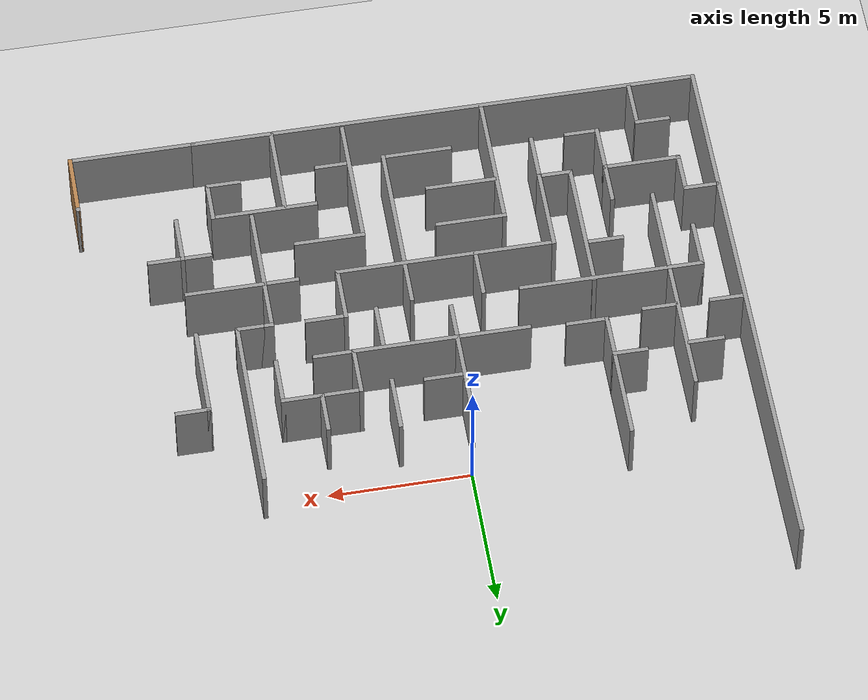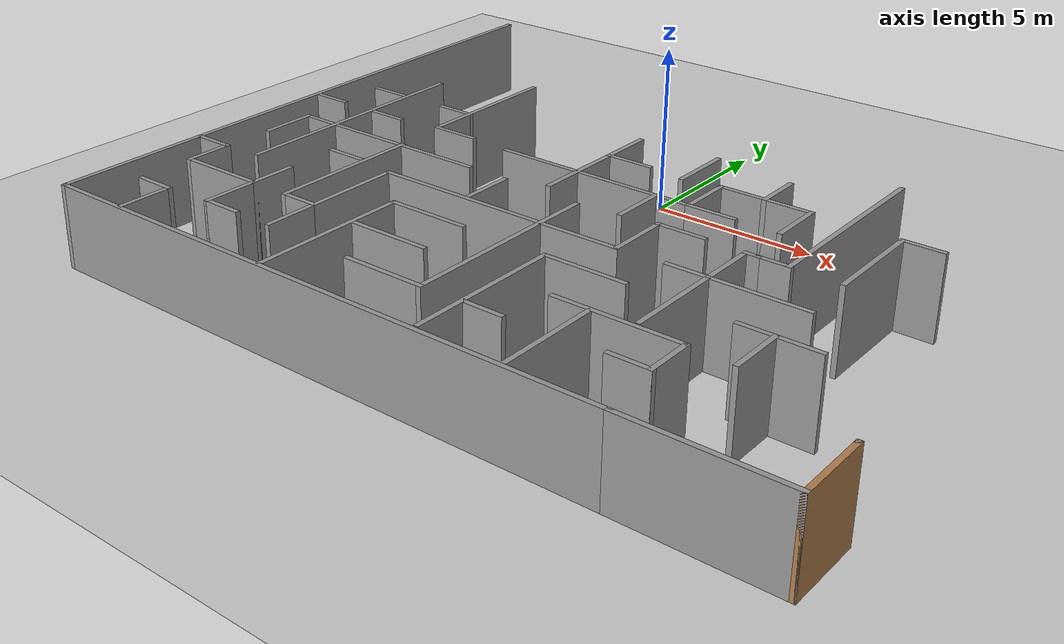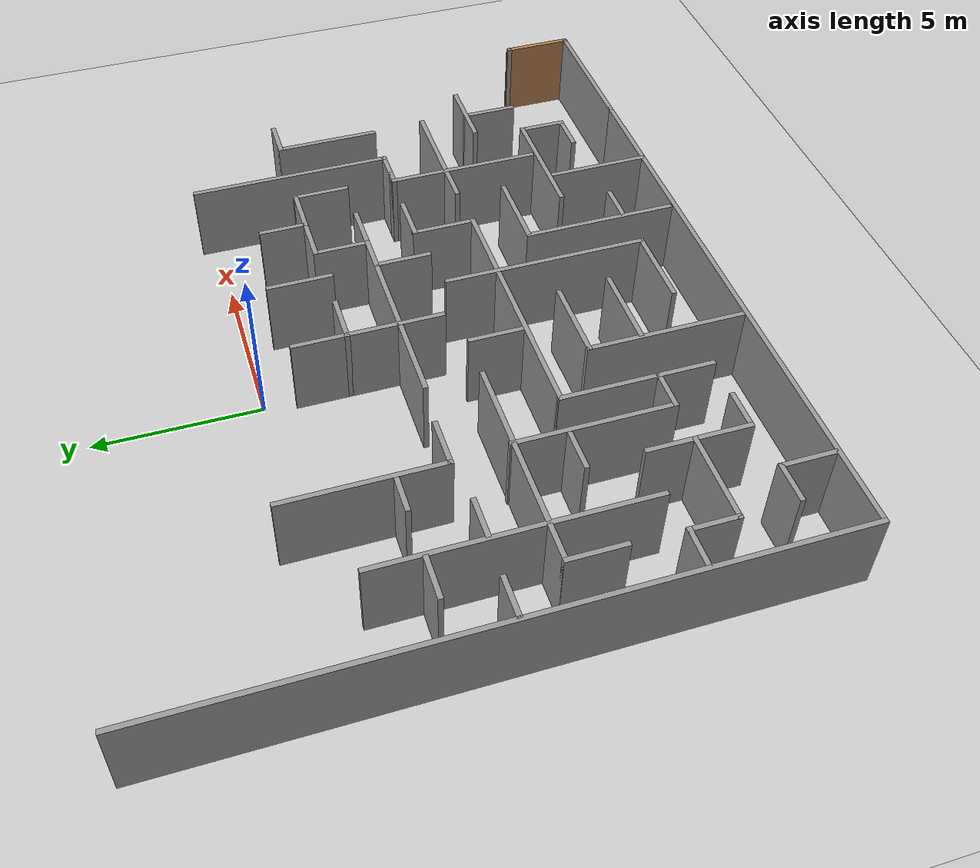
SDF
<sdf version="1.6">
 <world name="default">
  <model name="ground_plane">
   <static>1</static>
   <link name="link">
    <collision name="collision">
     <geometry><plane><normal>0 0 1</normal><size>100 100</size></plane></geometry>
     <surface><friction><ode><mu>100</mu><mu2>50</mu2></ode></friction></surface>
    </collision>
    <visual name="visual">
     <cast_shadows>0</cast_shadows>
     <geometry><plane><normal>0 0 1</normal><size>100 100</size></plane></geometry>
     <material>
      <script><uri>file://media/materials/scripts/gazebo.material</uri><name>Gazebo/Grey</name></script>
     </material>
    </visual>
   </link>
  </model>
  <model name="maze">
   <pose>0.076161 -0.985073 0 0 -0 0</pose>
   <link name="Wall_10">
    <collision name="Wall_10_Collision">
     <geometry><box><size>18 0.15 2.5</size></box></geometry>
     <pose>0 0 1.25 0 -0 0</pose>
    </collision>
    <visual name="Wall_10_Visual">
     <pose>0 0 1.25 0 -0 0</pose>
     <geometry><box><size>18 0.15 2.5</size></box></geometry>
     <material>
      <script><uri>file://media/materials/scripts/gazebo.material</uri><name>Gazebo/Grey</name></script>
      <ambient>1 1 1 1</ambient>
     </material>
     <meta><layer>0</layer></meta>
    </visual>
    <pose>-1.40681 -12.6653 0 0 -0 0</pose>
   </link>
   <link name="Wall_100">
    <collision name="Wall_100_Collision">
     <geometry><box><size>1.5 0.15 2.5</size></box></geometry>
     <pose>0 0 1.25 0 -0 0</pose>
    </collision>
    <visual name="Wall_100_Visual">
     <pose>0 0 1.25 0 -0 0</pose>
     <geometry><box><size>1.5 0.15 2.5</size></box></geometry>
     <material>
      <script><uri>file://media/materials/scripts/gazebo.material</uri><name>Gazebo/Grey</name></script>
      <ambient>1 1 1 1</ambient>
     </material>
     <meta><layer>0</layer></meta>
    </visual>
    <pose>4.69711 -0.840511 0 0 -0 1.5708</pose>
   </link>
   <link name="Wall_104">
    <collision name="Wall_104_Collision">
     <geometry><box><size>6.25 0.15 2.5</size></box></geometry>
     <pose>0 0 1.25 0 -0 0</pose>
    </collision>
    <visual name="Wall_104_Visual">
     <pose>0 0 1.25 0 -0 0</pose>
     <geometry><box><size>6.25 0.15 2.5</size></box></geometry>
     <material>
      <script><uri>file://media/materials/scripts/gazebo.material</uri><name>Gazebo/Grey</name></script>
      <ambient>1 1 1 1</ambient>
     </material>
     <meta><layer>0</layer></meta>
    </visual>
    <pose>7.14711 -1.61551 0 0 -0 -1.5708</pose>
   </link>
   <link name="Wall_105">
    <collision name="Wall_105_Collision">
     <geometry><box><size>1 0.15 2.5</size></box></geometry>
     <pose>0 0 1.25 0 -0 0</pose>
    </collision>
    <visual name="Wall_105_Visual">
     <pose>0 0 1.25 0 -0 0</pose>
     <geometry><box><size>1 0.15 2.5</size></box></geometry>
     <material>
      <script><uri>file://media/materials/scripts/gazebo.material</uri><name>Gazebo/Grey</name></script>
      <ambient>1 1 1 1</ambient>
     </material>
     <meta><layer>0</layer></meta>
    </visual>
    <pose>6.72211 -4.66551 0 0 -0 3.14159</pose>
   </link>
   <link name="Wall_106">
    <collision name="Wall_106_Collision">
     <geometry><box><size>0.5 0.15 2.5</size></box></geometry>
     <pose>0 0 1.25 0 -0 0</pose>
    </collision>
    <visual name="Wall_106_Visual">
     <pose>0 0 1.25 0 -0 0</pose>
     <geometry><box><size>0.5 0.15 2.5</size></box></geometry>
     <material>
      <script><uri>file://media/materials/scripts/gazebo.material</uri><name>Gazebo/Grey</name></script>
      <ambient>1 1 1 1</ambient>
     </material>
     <meta><layer>0</layer></meta>
    </visual>
    <pose>6.12211 -4.66551 0 0 -0 3.14159</pose>
   </link>
   <link name="Wall_107">
    <collision name="Wall_107_Collision">
     <geometry><box><size>4.75 0.15 2.5</size></box></geometry>
     <pose>0 0 1.25 0 -0 0</pose>
    </collision>
    <visual name="Wall_107_Visual">
     <pose>0 0 1.25 0 -0 0</pose>
     <geometry><box><size>4.75 0.15 2.5</size></box></geometry>
     <material>
      <script><uri>file://media/materials/scripts/gazebo.material</uri><name>Gazebo/Grey</name></script>
      <ambient>1 1 1 1</ambient>
     </material>
     <meta><layer>0</layer></meta>
    </visual>
    <pose>5.94711 -6.96551 0 0 -0 -1.5708</pose>
   </link>
   <link name="Wall_109">
    <collision name="Wall_109_Collision">
     <geometry><box><size>4.5 0.15 2.5</size></box></geometry>
     <pose>0 0 1.25 0 -0 0</pose>
    </collision>
    <visual name="Wall_109_Visual">
     <pose>0 0 1.25 0 -0 0</pose>
     <geometry><box><size>4.5 0.15 2.5</size></box></geometry>
     <material>
      <script><uri>file://media/materials/scripts/gazebo.material</uri><name>Gazebo/Grey</name></script>
      <ambient>1 1 1 1</ambient>
     </material>
     <meta><layer>0</layer></meta>
    </visual>
    <pose>-0.252522 -2.20089 0 0 -0 -1.5708</pose>
   </link>
   <link name="Wall_111">
    <collision name="Wall_111_Collision">
     <geometry><box><size>1.5 0.15 2.5</size></box></geometry>
     <pose>0 0 1.25 0 -0 0</pose>
    </collision>
    <visual name="Wall_111_Visual">
     <pose>0 0 1.25 0 -0 0</pose>
     <geometry><box><size>1.5 0.15 2.5</size></box></geometry>
     <material>
      <script><uri>file://media/materials/scripts/gazebo.material</uri><name>Gazebo/Grey</name></script>
      <ambient>1 1 1 1</ambient>
     </material>
     <meta><layer>0</layer></meta>
    </visual>
    <pose>0.422478 -1.57708 0 0 -0 0</pose>
   </link>
   <link name="Wall_124">
    <collision name="Wall_124_Collision">
     <geometry><box><size>2 0.15 2.5</size></box></geometry>
     <pose>0 0 1.25 0 -0 0</pose>
    </collision>
    <visual name="Wall_124_Visual">
     <pose>0 0 1.25 0 -0 0</pose>
     <geometry><box><size>2 0.15 2.5</size></box></geometry>
     <material>
      <script><uri>file://media/materials/scripts/gazebo.material</uri><name>Gazebo/Grey</name></script>
      <ambient>1 1 1 1</ambient>
     </material>
     <meta><layer>0</layer></meta>
    </visual>
    <pose>2.25325 -0.791789 0 0 -0 -1.5708</pose>
   </link>
   <link name="Wall_129">
    <collision name="Wall_129_Collision">
     <geometry><box><size>4.75 0.15 2.5</size></box></geometry>
     <pose>0 0 1.25 0 -0 0</pose>
    </collision>
    <visual name="Wall_129_Visual">
     <pose>0 0 1.25 0 -0 0</pose>
     <geometry><box><size>4.75 0.15 2.5</size></box></geometry>
     <material>
      <script><uri>file://media/materials/scripts/gazebo.material</uri><name>Gazebo/Grey</name></script>
      <ambient>1 1 1 1</ambient>
     </material>
     <meta><layer>0</layer></meta>
    </visual>
    <pose>2.25325 -10.1752 0 0 -0 1.5708</pose>
   </link>
   <link name="Wall_130">
    <collision name="Wall_130_Collision">
     <geometry><box><size>2.5 0.15 2.5</size></box></geometry>
     <pose>0 0 1.25 0 -0 0</pose>
    </collision>
    <visual name="Wall_130_Visual">
     <pose>0 0 1.25 0 -0 0</pose>
     <geometry><box><size>2.5 0.15 2.5</size></box></geometry>
     <material>
      <script><uri>file://media/materials/scripts/gazebo.material</uri><name>Gazebo/Grey</name></script>
      <ambient>1 1 1 1</ambient>
     </material>
     <meta><layer>0</layer></meta>
    </visual>
    <pose>3.42825 -7.87519 0 0 -0 0</pose>
   </link>
   <link name="Wall_132">
    <collision name="Wall_132_Collision">
     <geometry><box><size>1.25 0.15 2.5</size></box></geometry>
     <pose>0 0 1.25 0 -0 0</pose>
    </collision>
    <visual name="Wall_132_Visual">
     <pose>0 0 1.25 0 -0 0</pose>
     <geometry><box><size>1.25 0.15 2.5</size></box></geometry>
     <material>
      <script><uri>file://media/materials/scripts/gazebo.material</uri><name>Gazebo/Grey</name></script>
      <ambient>1 1 1 1</ambient>
     </material>
     <meta><layer>0</layer></meta>
    </visual>
    <pose>2.84302 -10.9638 0 0 -0 0</pose>
   </link>
   <link name="Wall_134">
    <collision name="Wall_134_Collision">
     <geometry><box><size>3.75 0.15 2.5</size></box></geometry>
     <pose>0 0 1.25 0 -0 0</pose>
    </collision>
    <visual name="Wall_134_Visual">
     <pose>0 0 1.25 0 -0 0</pose>
     <geometry><box><size>3.75 0.15 2.5</size></box></geometry>
     <material>
      <script><uri>file://media/materials/scripts/gazebo.material</uri><name>Gazebo/Grey</name></script>
      <ambient>1 1 1 1</ambient>
     </material>
     <meta><layer>0</layer></meta>
    </visual>
    <pose>5.48512 -9.45236 0 0 -0 0</pose>
   </link>
   <link name="Wall_135">
    <collision name="Wall_135_Collision">
     <geometry><box><size>1.5 0.15 2.5</size></box></geometry>
     <pose>0 0 1.25 0 -0 0</pose>
    </collision>
    <visual name="Wall_135_Visual">
     <pose>0 0 1.25 0 -0 0</pose>
     <geometry><box><size>1.5 0.15 2.5</size></box></geometry>
     <material>
      <script><uri>file://media/materials/scripts/gazebo.material</uri><name>Gazebo/Grey</name></script>
      <ambient>1 1 1 1</ambient>
     </material>
     <meta><layer>0</layer></meta>
    </visual>
    <pose>7.28512 -10.1274 0 0 -0 -1.5708</pose>
   </link>
   <link name="Wall_136">
    <collision name="Wall_136_Collision">
     <geometry><box><size>1.25 0.15 2.5</size></box></geometry>
     <pose>0 0 1.25 0 -0 0</pose>
    </collision>
    <visual name="Wall_136_Visual">
     <pose>0 0 1.25 0 -0 0</pose>
     <geometry><box><size>1.25 0.15 2.5</size></box></geometry>
     <material>
      <script><uri>file://media/materials/scripts/gazebo.material</uri><name>Gazebo/Grey</name></script>
      <ambient>1 1 1 1</ambient>
     </material>
     <meta><layer>0</layer></meta>
    </visual>
    <pose>6.73512 -10.8024 0 0 -0 3.14159</pose>
   </link>
   <link name="Wall_138">
    <collision name="Wall_138_Collision">
     <geometry><box><size>3.25 0.15 2.5</size></box></geometry>
     <pose>0 0 1.25 0 -0 0</pose>
    </collision>
    <visual name="Wall_138_Visual">
     <pose>0 0 1.25 0 -0 0</pose>
     <geometry><box><size>3.25 0.15 2.5</size></box></geometry>
     <material>
      <script><uri>file://media/materials/scripts/gazebo.material</uri><name>Gazebo/Grey</name></script>
      <ambient>1 1 1 1</ambient>
     </material>
     <meta><layer>0</layer></meta>
    </visual>
    <pose>4.75902 -11.0819 0 0 -0 -1.5708</pose>
   </link>
   <link name="Wall_140">
    <collision name="Wall_140_Collision">
     <geometry><box><size>2.25 0.15 2.5</size></box></geometry>
     <pose>0 0 1.25 0 -0 0</pose>
    </collision>
    <visual name="Wall_140_Visual">
     <pose>0 0 1.25 0 -0 0</pose>
     <geometry><box><size>2.25 0.15 2.5</size></box></geometry>
     <material>
      <script><uri>file://media/materials/scripts/gazebo.material</uri><name>Gazebo/Grey</name></script>
      <ambient>1 1 1 1</ambient>
     </material>
     <meta><layer>0</layer></meta>
    </visual>
    <pose>8.68079 -7.90117 0 0 -0 3.14159</pose>
   </link>
   <link name="Wall_142">
    <collision name="Wall_142_Collision">
     <geometry><box><size>1.75 0.15 2.5</size></box></geometry>
     <pose>0 0 1.25 0 -0 0</pose>
    </collision>
    <visual name="Wall_142_Visual">
     <pose>0 0 1.25 0 -0 0</pose>
     <geometry><box><size>1.75 0.15 2.5</size></box></geometry>
     <material>
      <script><uri>file://media/materials/scripts/gazebo.material</uri><name>Gazebo/Grey</name></script>
      <ambient>1 1 1 1</ambient>
     </material>
     <meta><layer>0</layer></meta>
    </visual>
    <pose>8.57734 -8.70116 0 0 -0 -1.5708</pose>
   </link>
   <link name="Wall_144">
    <collision name="Wall_144_Collision">
     <geometry><box><size>4 0.15 2.5</size></box></geometry>
     <pose>0 0 1.25 0 -0 0</pose>
    </collision>
    <visual name="Wall_144_Visual">
     <pose>0 0 1.25 0 -0 0</pose>
     <geometry><box><size>4 0.15 2.5</size></box></geometry>
     <material>
      <script><uri>file://media/materials/scripts/gazebo.material</uri><name>Gazebo/Grey</name></script>
      <ambient>1 1 1 1</ambient>
     </material>
     <meta><layer>0</layer></meta>
    </visual>
    <pose>6.72379 -6.38975 0 0 -0 0</pose>
   </link>
   <link name="Wall_146">
    <collision name="Wall_146_Collision">
     <geometry><box><size>3.25 0.15 2.5</size></box></geometry>
     <pose>0 0 1.25 0 -0 0</pose>
    </collision>
    <visual name="Wall_146_Visual">
     <pose>0 0 1.25 0 -0 0</pose>
     <geometry><box><size>3.25 0.15 2.5</size></box></geometry>
     <material>
      <script><uri>file://media/materials/scripts/gazebo.material</uri><name>Gazebo/Grey</name></script>
      <ambient>1 1 1 1</ambient>
     </material>
     <meta><layer>0</layer></meta>
    </visual>
    <pose>8.57734 -3.12946 0 0 -0 1.5708</pose>
   </link>
   <link name="Wall_147">
    <collision name="Wall_147_Collision">
     <geometry><box><size>1.25 0.15 2.5</size></box></geometry>
     <pose>0 0 1.25 0 -0 0</pose>
    </collision>
    <visual name="Wall_147_Visual">
     <pose>0 0 1.25 0 -0 0</pose>
     <geometry><box><size>1.25 0.15 2.5</size></box></geometry>
     <material>
      <script><uri>file://media/materials/scripts/gazebo.material</uri><name>Gazebo/Grey</name></script>
      <ambient>1 1 1 1</ambient>
     </material>
     <meta><layer>0</layer></meta>
    </visual>
    <pose>9.12734 -1.57946 0 0 -0 0</pose>
   </link>
   <link name="Wall_175">
    <collision name="Wall_175_Collision">
     <geometry><box><size>1.5 0.15 2.5</size></box></geometry>
     <pose>0 0 1.25 0 -0 0</pose>
    </collision>
    <visual name="Wall_175_Visual">
     <pose>0 0 1.25 0 -0 0</pose>
     <geometry><box><size>1.5 0.15 2.5</size></box></geometry>
     <material>
      <script><uri>file://media/materials/scripts/gazebo.material</uri><name>Gazebo/Grey</name></script>
      <ambient>1 1 1 1</ambient>
     </material>
     <meta><layer>0</layer></meta>
    </visual>
    <pose>5.37211 -1.51551 0 0 -0 0</pose>
   </link>
   <link name="Wall_176">
    <collision name="Wall_176_Collision">
     <geometry><box><size>1.75 0.15 2.5</size></box></geometry>
     <pose>0 0 1.25 0 -0 0</pose>
    </collision>
    <visual name="Wall_176_Visual">
     <pose>0 0 1.25 0 -0 0</pose>
     <geometry><box><size>1.75 0.15 2.5</size></box></geometry>
     <material>
      <script><uri>file://media/materials/scripts/gazebo.material</uri><name>Gazebo/Grey</name></script>
      <ambient>1 1 1 1</ambient>
     </material>
     <meta><layer>0</layer></meta>
    </visual>
    <pose>6.04711 -2.31551 0 0 -0 -1.5708</pose>
   </link>
   <link name="Wall_182">
    <collision name="Wall_182_Collision">
     <geometry><box><size>1.5 0.15 2.5</size></box></geometry>
     <pose>0 0 1.25 0 -0 0</pose>
    </collision>
    <visual name="Wall_182_Visual">
     <pose>0 0 1.25 0 -0 0</pose>
     <geometry><box><size>1.5 0.15 2.5</size></box></geometry>
     <material>
      <script><uri>file://media/materials/scripts/gazebo.material</uri><name>Gazebo/Grey</name></script>
      <ambient>1 1 1 1</ambient>
     </material>
     <meta><layer>0</layer></meta>
    </visual>
    <pose>4.02211 -3.11551 0 0 -0 0</pose>
   </link>
   <link name="Wall_184">
    <collision name="Wall_184_Collision">
     <geometry><box><size>1.25 0.15 2.5</size></box></geometry>
     <pose>0 0 1.25 0 -0 0</pose>
    </collision>
    <visual name="Wall_184_Visual">
     <pose>0 0 1.25 0 -0 0</pose>
     <geometry><box><size>1.25 0.15 2.5</size></box></geometry>
     <material>
      <script><uri>file://media/materials/scripts/gazebo.material</uri><name>Gazebo/Grey</name></script>
      <ambient>1 1 1 1</ambient>
     </material>
     <meta><layer>0</layer></meta>
    </visual>
    <pose>-6.02635 -6.26725 0 0 -0 0</pose>
   </link>
   <link name="Wall_192">
    <collision name="Wall_192_Collision">
     <geometry><box><size>1.75 0.15 2.5</size></box></geometry>
     <pose>0 0 1.25 0 -0 0</pose>
    </collision>
    <visual name="Wall_192_Visual">
     <pose>0 0 1.25 0 -0 0</pose>
     <geometry><box><size>1.75 0.15 2.5</size></box></geometry>
     <material>
      <script><uri>file://media/materials/scripts/gazebo.material</uri><name>Gazebo/Grey</name></script>
      <ambient>1 1 1 1</ambient>
     </material>
     <meta><layer>0</layer></meta>
    </visual>
    <pose>2.311 -3.92815 0 0 -0 -1.5708</pose>
   </link>
   <link name="Wall_195">
    <collision name="Wall_195_Collision">
     <geometry><box><size>4.5 0.15 2.5</size></box></geometry>
     <pose>0 0 1.25 0 -0 0</pose>
    </collision>
    <visual name="Wall_195_Visual">
     <pose>0 0 1.25 0 -0 0</pose>
     <geometry><box><size>4.5 0.15 2.5</size></box></geometry>
     <material>
      <script><uri>file://media/materials/scripts/gazebo.material</uri><name>Gazebo/Grey</name></script>
      <ambient>1 1 1 1</ambient>
     </material>
     <meta><layer>0</layer></meta>
    </visual>
    <pose>9.69319 -12.6653 0 0 -0 0</pose>
   </link>
   <link name="Wall_197">
    <collision name="Wall_197_Collision">
     <geometry><box><size>0.15 0.15 2.5</size></box></geometry>
     <pose>0 0 1.25 0 -0 0</pose>
    </collision>
    <visual name="Wall_197_Visual">
     <pose>0 0 1.25 0 -0 0</pose>
     <geometry><box><size>0.15 0.15 2.5</size></box></geometry>
     <material>
      <script><uri>file://media/materials/scripts/gazebo.material</uri><name>Gazebo/Grey</name></script>
      <ambient>1 1 1 1</ambient>
     </material>
     <meta><layer>0</layer></meta>
    </visual>
    <pose>11.8682 -10.5653 0 0 -0 0</pose>
   </link>
   <link name="Wall_201">
    <collision name="Wall_201_Collision">
     <geometry><box><size>2.25 0.15 2.5</size></box></geometry>
     <pose>0 0 1.25 0 -0 0</pose>
    </collision>
    <visual name="Wall_201_Visual">
     <pose>0 0 1.25 0 -0 0</pose>
     <geometry><box><size>2.25 0.15 2.5</size></box></geometry>
     <material>
      <script><uri>file://media/materials/scripts/gazebo.material</uri><name>Gazebo/Wood</name></script>
      <ambient>1 1 1 1</ambient>
     </material>
     <meta><layer>0</layer></meta>
    </visual>
    <pose>11.8682 -11.6153 0 0 -0 -1.5708</pose>
   </link>
   <link name="Wall_45">
    <collision name="Wall_45_Collision">
     <geometry><box><size>1.3 0.15 2.5</size></box></geometry>
     <pose>0 0 1.25 0 -0 0</pose>
    </collision>
    <visual name="Wall_45_Visual">
     <pose>0 0 1.25 0 -0 0</pose>
     <geometry><box><size>1.3 0.15 2.5</size></box></geometry>
     <material>
      <script><uri>file://media/materials/scripts/gazebo.material</uri><name>Gazebo/Grey</name></script>
      <ambient>1 1 1 1</ambient>
     </material>
     <meta><layer>0</layer></meta>
    </visual>
    <pose>-8.64616 -1.57393 0 0 -0 0</pose>
   </link>
   <link name="Wall_48">
    <collision name="Wall_48_Collision">
     <geometry><box><size>8 0.15 2.5</size></box></geometry>
     <pose>0 0 1.25 0 -0 0</pose>
    </collision>
    <visual name="Wall_48_Visual">
     <pose>0 0 1.25 0 -0 0</pose>
     <geometry><box><size>8 0.15 2.5</size></box></geometry>
     <material>
      <script><uri>file://media/materials/scripts/gazebo.material</uri><name>Gazebo/Grey</name></script>
      <ambient>1 1 1 1</ambient>
     </material>
     <meta><layer>0</layer></meta>
    </visual>
    <pose>-7.97568 -3.93398 0 0 -0 -1.5708</pose>
   </link>
   <link name="Wall_50">
    <collision name="Wall_50_Collision">
     <geometry><box><size>1.25 0.15 2.5</size></box></geometry>
     <pose>0 0 1.25 0 -0 0</pose>
    </collision>
    <visual name="Wall_50_Visual">
     <pose>0 0 1.25 0 -0 0</pose>
     <geometry><box><size>1.25 0.15 2.5</size></box></geometry>
     <material>
      <script><uri>file://media/materials/scripts/gazebo.material</uri><name>Gazebo/Grey</name></script>
      <ambient>1 1 1 1</ambient>
     </material>
     <meta><layer>0</layer></meta>
    </visual>
    <pose>-9.69872 -3.16939 0 0 -0 0</pose>
   </link>
   <link name="Wall_52">
    <collision name="Wall_52_Collision">
     <geometry><box><size>1.75 0.15 2.5</size></box></geometry>
     <pose>0 0 1.25 0 -0 0</pose>
    </collision>
    <visual name="Wall_52_Visual">
     <pose>0 0 1.25 0 -0 0</pose>
     <geometry><box><size>1.75 0.15 2.5</size></box></geometry>
     <material>
      <script><uri>file://media/materials/scripts/gazebo.material</uri><name>Gazebo/Grey</name></script>
      <ambient>1 1 1 1</ambient>
     </material>
     <meta><layer>0</layer></meta>
    </visual>
    <pose>-9.12156 -5.55313 0 0 -0 1.5708</pose>
   </link>
   <link name="Wall_53">
    <collision name="Wall_53_Collision">
     <geometry><box><size>6.5 0.15 2.5</size></box></geometry>
     <pose>0 0 1.25 0 -0 0</pose>
    </collision>
    <visual name="Wall_53_Visual">
     <pose>0 0 1.25 0 -0 0</pose>
     <geometry><box><size>6.5 0.15 2.5</size></box></geometry>
     <material>
      <script><uri>file://media/materials/scripts/gazebo.material</uri><name>Gazebo/Grey</name></script>
      <ambient>1 1 1 1</ambient>
     </material>
     <meta><layer>0</layer></meta>
    </visual>
    <pose>-5.94656 -4.75313 0 0 -0 0</pose>
   </link>
   <link name="Wall_60">
    <collision name="Wall_60_Collision">
     <geometry><box><size>4.75 0.15 2.5</size></box></geometry>
     <pose>0 0 1.25 0 -0 0</pose>
    </collision>
    <visual name="Wall_60_Visual">
     <pose>0 0 1.25 0 -0 0</pose>
     <geometry><box><size>4.75 0.15 2.5</size></box></geometry>
     <material>
      <script><uri>file://media/materials/scripts/gazebo.material</uri><name>Gazebo/Grey</name></script>
      <ambient>1 1 1 1</ambient>
     </material>
     <meta><layer>0</layer></meta>
    </visual>
    <pose>-5.44937 -0.703377 0 0 -0 -1.5708</pose>
   </link>
   <link name="Wall_61">
    <collision name="Wall_61_Collision">
     <geometry><box><size>1.5 0.15 2.5</size></box></geometry>
     <pose>0 0 1.25 0 -0 0</pose>
    </collision>
    <visual name="Wall_61_Visual">
     <pose>0 0 1.25 0 -0 0</pose>
     <geometry><box><size>1.5 0.15 2.5</size></box></geometry>
     <material>
      <script><uri>file://media/materials/scripts/gazebo.material</uri><name>Gazebo/Grey</name></script>
      <ambient>1 1 1 1</ambient>
     </material>
     <meta><layer>0</layer></meta>
    </visual>
    <pose>-4.77437 -3.00338 0 0 -0 0</pose>
   </link>
   <link name="Wall_63">
    <collision name="Wall_63_Collision">
     <geometry><box><size>1.25 0.15 2.5</size></box></geometry>
     <pose>0 0 1.25 0 -0 0</pose>
    </collision>
    <visual name="Wall_63_Visual">
     <pose>0 0 1.25 0 -0 0</pose>
     <geometry><box><size>1.25 0.15 2.5</size></box></geometry>
     <material>
      <script><uri>file://media/materials/scripts/gazebo.material</uri><name>Gazebo/Grey</name></script>
      <ambient>1 1 1 1</ambient>
     </material>
     <meta><layer>0</layer></meta>
    </visual>
    <pose>-5.99655 -1.54169 0 0 -0 0</pose>
   </link>
   <link name="Wall_65">
    <collision name="Wall_65_Collision">
     <geometry><box><size>1.25 0.15 2.5</size></box></geometry>
     <pose>0 0 1.25 0 -0 0</pose>
    </collision>
    <visual name="Wall_65_Visual">
     <pose>0 0 1.25 0 -0 0</pose>
     <geometry><box><size>1.25 0.15 2.5</size></box></geometry>
     <material>
      <script><uri>file://media/materials/scripts/gazebo.material</uri><name>Gazebo/Grey</name></script>
      <ambient>1 1 1 1</ambient>
     </material>
     <meta><layer>0</layer></meta>
    </visual>
    <pose>-7.33136 -3.19714 0 0 -0 0</pose>
   </link>
   <link name="Wall_67">
    <collision name="Wall_67_Collision">
     <geometry><box><size>1.25 0.15 2.5</size></box></geometry>
     <pose>0 0 1.25 0 -0 0</pose>
    </collision>
    <visual name="Wall_67_Visual">
     <pose>0 0 1.25 0 -0 0</pose>
     <geometry><box><size>1.25 0.15 2.5</size></box></geometry>
     <material>
      <script><uri>file://media/materials/scripts/gazebo.material</uri><name>Gazebo/Grey</name></script>
      <ambient>1 1 1 1</ambient>
     </material>
     <meta><layer>0</layer></meta>
    </visual>
    <pose>-9.71463 -7.95752 0 0 -0 0</pose>
   </link>
   <link name="Wall_68">
    <collision name="Wall_68_Collision">
     <geometry><box><size>1.5 0.15 2.5</size></box></geometry>
     <pose>0 0 1.25 0 -0 0</pose>
    </collision>
    <visual name="Wall_68_Visual">
     <pose>0 0 1.25 0 -0 0</pose>
     <geometry><box><size>1.5 0.15 2.5</size></box></geometry>
     <material>
      <script><uri>file://media/materials/scripts/gazebo.material</uri><name>Gazebo/Grey</name></script>
      <ambient>1 1 1 1</ambient>
     </material>
     <meta><layer>0</layer></meta>
    </visual>
    <pose>-9.16463 -8.63252 0 0 -0 -1.5708</pose>
   </link>
   <link name="Wall_69">
    <collision name="Wall_69_Collision">
     <geometry><box><size>2.75 0.15 2.5</size></box></geometry>
     <pose>0 0 1.25 0 -0 0</pose>
    </collision>
    <visual name="Wall_69_Visual">
     <pose>0 0 1.25 0 -0 0</pose>
     <geometry><box><size>2.75 0.15 2.5</size></box></geometry>
     <material>
      <script><uri>file://media/materials/scripts/gazebo.material</uri><name>Gazebo/Grey</name></script>
      <ambient>1 1 1 1</ambient>
     </material>
     <meta><layer>0</layer></meta>
    </visual>
    <pose>-7.86463 -9.30752 0 0 -0 0</pose>
   </link>
   <link name="Wall_70">
    <collision name="Wall_70_Collision">
     <geometry><box><size>1.5 0.15 2.5</size></box></geometry>
     <pose>0 0 1.25 0 -0 0</pose>
    </collision>
    <visual name="Wall_70_Visual">
     <pose>0 0 1.25 0 -0 0</pose>
     <geometry><box><size>1.5 0.15 2.5</size></box></geometry>
     <material>
      <script><uri>file://media/materials/scripts/gazebo.material</uri><name>Gazebo/Grey</name></script>
      <ambient>1 1 1 1</ambient>
     </material>
     <meta><layer>0</layer></meta>
    </visual>
    <pose>-6.56463 -8.63252 0 0 -0 1.5708</pose>
   </link>
   <link name="Wall_72">
    <collision name="Wall_72_Collision">
     <geometry><box><size>1.75 0.15 2.5</size></box></geometry>
     <pose>0 0 1.25 0 -0 0</pose>
    </collision>
    <visual name="Wall_72_Visual">
     <pose>0 0 1.25 0 -0 0</pose>
     <geometry><box><size>1.75 0.15 2.5</size></box></geometry>
     <material>
      <script><uri>file://media/materials/scripts/gazebo.material</uri><name>Gazebo/Grey</name></script>
      <ambient>1 1 1 1</ambient>
     </material>
     <meta><layer>0</layer></meta>
    </visual>
    <pose>-6.56463 -10.1075 0 0 -0 -1.5708</pose>
   </link>
   <link name="Wall_73">
    <collision name="Wall_73_Collision">
     <geometry><box><size>1.25 0.15 2.5</size></box></geometry>
     <pose>0 0 1.25 0 -0 0</pose>
    </collision>
    <visual name="Wall_73_Visual">
     <pose>0 0 1.25 0 -0 0</pose>
     <geometry><box><size>1.25 0.15 2.5</size></box></geometry>
     <material>
      <script><uri>file://media/materials/scripts/gazebo.material</uri><name>Gazebo/Grey</name></script>
      <ambient>1 1 1 1</ambient>
     </material>
     <meta><layer>0</layer></meta>
    </visual>
    <pose>-6.01463 -10.9075 0 0 -0 0</pose>
   </link>
   <link name="Wall_75">
    <collision name="Wall_75_Collision">
     <geometry><box><size>1.25 0.15 2.5</size></box></geometry>
     <pose>0 0 1.25 0 -0 0</pose>
    </collision>
    <visual name="Wall_75_Visual">
     <pose>0 0 1.25 0 -0 0</pose>
     <geometry><box><size>1.25 0.15 2.5</size></box></geometry>
     <material>
      <script><uri>file://media/materials/scripts/gazebo.material</uri><name>Gazebo/Grey</name></script>
      <ambient>1 1 1 1</ambient>
     </material>
     <meta><layer>0</layer></meta>
    </visual>
    <pose>-8.57197 -11.025 0 0 -0 0.000214</pose>
   </link>
   <link name="Wall_76">
    <collision name="Wall_76_Collision">
     <geometry><box><size>1.7 0.15 2.5</size></box></geometry>
     <pose>0 0 1.25 0 -0 0</pose>
    </collision>
    <visual name="Wall_76_Visual">
     <pose>0 0 1.25 0 -0 0</pose>
     <geometry><box><size>1.7 0.15 2.5</size></box></geometry>
     <material>
      <script><uri>file://media/materials/scripts/gazebo.material</uri><name>Gazebo/Grey</name></script>
      <ambient>1 1 1 1</ambient>
     </material>
     <meta><layer>0</layer></meta>
    </visual>
    <pose>-8.02216 -11.7999 0 0 -0 -1.5708</pose>
   </link>
   <link name="Wall_78">
    <collision name="Wall_78_Collision">
     <geometry><box><size>4.75 0.15 2.5</size></box></geometry>
     <pose>0 0 1.25 0 -0 0</pose>
    </collision>
    <visual name="Wall_78_Visual">
     <pose>0 0 1.25 0 -0 0</pose>
     <geometry><box><size>4.75 0.15 2.5</size></box></geometry>
     <material>
      <script><uri>file://media/materials/scripts/gazebo.material</uri><name>Gazebo/Grey</name></script>
      <ambient>1 1 1 1</ambient>
     </material>
     <meta><layer>0</layer></meta>
    </visual>
    <pose>-5.32056 -7.01051 0 0 -0 -1.5708</pose>
   </link>
   <link name="Wall_79">
    <collision name="Wall_79_Collision">
     <geometry><box><size>1.25 0.15 2.5</size></box></geometry>
     <pose>0 0 1.25 0 -0 0</pose>
    </collision>
    <visual name="Wall_79_Visual">
     <pose>0 0 1.25 0 -0 0</pose>
     <geometry><box><size>1.25 0.15 2.5</size></box></geometry>
     <material>
      <script><uri>file://media/materials/scripts/gazebo.material</uri><name>Gazebo/Grey</name></script>
      <ambient>1 1 1 1</ambient>
     </material>
     <meta><layer>0</layer></meta>
    </visual>
    <pose>-4.77056 -9.31051 0 0 -0 0</pose>
   </link>
   <link name="Wall_80">
    <collision name="Wall_80_Collision">
     <geometry><box><size>3 0.15 2.5</size></box></geometry>
     <pose>0 0 1.25 0 -0 0</pose>
    </collision>
    <visual name="Wall_80_Visual">
     <pose>0 0 1.25 0 -0 0</pose>
     <geometry><box><size>3 0.15 2.5</size></box></geometry>
     <material>
      <script><uri>file://media/materials/scripts/gazebo.material</uri><name>Gazebo/Grey</name></script>
      <ambient>1 1 1 1</ambient>
     </material>
     <meta><layer>0</layer></meta>
    </visual>
    <pose>-4.22056 -7.88551 0 0 -0 1.5708</pose>
   </link>
   <link name="Wall_81">
    <collision name="Wall_81_Collision">
     <geometry><box><size>7.75 0.15 2.5</size></box></geometry>
     <pose>0 0 1.25 0 -0 0</pose>
    </collision>
    <visual name="Wall_81_Visual">
     <pose>0 0 1.25 0 -0 0</pose>
     <geometry><box><size>7.75 0.15 2.5</size></box></geometry>
     <material>
      <script><uri>file://media/materials/scripts/gazebo.material</uri><name>Gazebo/Grey</name></script>
      <ambient>1 1 1 1</ambient>
     </material>
     <meta><layer>0</layer></meta>
    </visual>
    <pose>-0.42056 -6.46051 0 0 -0 0</pose>
   </link>
   <link name="Wall_82">
    <collision name="Wall_82_Collision">
     <geometry><box><size>2 0.15 2.5</size></box></geometry>
     <pose>0 0 1.25 0 -0 0</pose>
    </collision>
    <visual name="Wall_82_Visual">
     <pose>0 0 1.25 0 -0 0</pose>
     <geometry><box><size>2 0.15 2.5</size></box></geometry>
     <material>
      <script><uri>file://media/materials/scripts/gazebo.material</uri><name>Gazebo/Grey</name></script>
      <ambient>1 1 1 1</ambient>
     </material>
     <meta><layer>0</layer></meta>
    </visual>
    <pose>3.37944 -5.53551 0 0 -0 1.5708</pose>
   </link>
   <link name="Wall_83">
    <collision name="Wall_83_Collision">
     <geometry><box><size>1.5 0.15 2.5</size></box></geometry>
     <pose>0 0 1.25 0 -0 0</pose>
    </collision>
    <visual name="Wall_83_Visual">
     <pose>0 0 1.25 0 -0 0</pose>
     <geometry><box><size>1.5 0.15 2.5</size></box></geometry>
     <material>
      <script><uri>file://media/materials/scripts/gazebo.material</uri><name>Gazebo/Grey</name></script>
      <ambient>1 1 1 1</ambient>
     </material>
     <meta><layer>0</layer></meta>
    </visual>
    <pose>4.05444 -4.61051 0 0 -0 0</pose>
   </link>
   <link name="Wall_85">
    <collision name="Wall_85_Collision">
     <geometry><box><size>1.75 0.15 2.5</size></box></geometry>
     <pose>0 0 1.25 0 -0 0</pose>
    </collision>
    <visual name="Wall_85_Visual">
     <pose>0 0 1.25 0 -0 0</pose>
     <geometry><box><size>1.75 0.15 2.5</size></box></geometry>
     <material>
      <script><uri>file://media/materials/scripts/gazebo.material</uri><name>Gazebo/Grey</name></script>
      <ambient>1 1 1 1</ambient>
     </material>
     <meta><layer>0</layer></meta>
    </visual>
    <pose>-4.22056 -10.1105 0 0 -0 -1.5708</pose>
   </link>
   <link name="Wall_87">
    <collision name="Wall_87_Collision">
     <geometry><box><size>2.5 0.15 2.5</size></box></geometry>
     <pose>0 0 1.25 0 -0 0</pose>
    </collision>
    <visual name="Wall_87_Visual">
     <pose>0 0 1.25 0 -0 0</pose>
     <geometry><box><size>2.5 0.15 2.5</size></box></geometry>
     <material>
      <script><uri>file://media/materials/scripts/gazebo.material</uri><name>Gazebo/Grey</name></script>
      <ambient>1 1 1 1</ambient>
     </material>
     <meta><layer>0</layer></meta>
    </visual>
    <pose>-1.5511 -7.86774 0 0 -0 -3.14143</pose>
   </link>
   <link name="Wall_88">
    <collision name="Wall_88_Collision">
     <geometry><box><size>4.86 0.15 2.5</size></box></geometry>
     <pose>0 0 1.25 0 -0 0</pose>
    </collision>
    <visual name="Wall_88_Visual">
     <pose>0 0 1.25 0 -0 0</pose>
     <geometry><box><size>4.86 0.15 2.5</size></box></geometry>
     <material>
      <script><uri>file://media/materials/scripts/gazebo.material</uri><name>Gazebo/Grey</name></script>
      <ambient>1 1 1 1</ambient>
     </material>
     <meta><layer>0</layer></meta>
    </visual>
    <pose>-2.72616 -10.2229 0 0 -0 -1.5708</pose>
   </link>
   <link name="Wall_9">
    <collision name="Wall_9_Collision">
     <geometry><box><size>19.25 0.15 2.5</size></box></geometry>
     <pose>0 0 1.25 0 -0 0</pose>
    </collision>
    <visual name="Wall_9_Visual">
     <pose>0 0 1.25 0 -0 0</pose>
     <geometry><box><size>19.25 0.15 2.5</size></box></geometry>
     <material>
      <script><uri>file://media/materials/scripts/gazebo.material</uri><name>Gazebo/Grey</name></script>
      <ambient>1 1 1 1</ambient>
     </material>
     <meta><layer>0</layer></meta>
    </visual>
    <pose>-10.3318 -3.11531 0 0 -0 -1.5708</pose>
   </link>
   <link name="Wall_90">
    <collision name="Wall_90_Collision">
     <geometry><box><size>2.5 0.15 2.5</size></box></geometry>
     <pose>0 0 1.25 0 -0 0</pose>
    </collision>
    <visual name="Wall_90_Visual">
     <pose>0 0 1.25 0 -0 0</pose>
     <geometry><box><size>2.5 0.15 2.5</size></box></geometry>
     <material>
      <script><uri>file://media/materials/scripts/gazebo.material</uri><name>Gazebo/Grey</name></script>
      <ambient>1 1 1 1</ambient>
     </material>
     <meta><layer>0</layer></meta>
    </visual>
    <pose>-1.46289 -9.44559 0 0 -0 0</pose>
   </link>
   <link name="Wall_92">
    <collision name="Wall_92_Collision">
     <geometry><box><size>2.5 0.15 2.5</size></box></geometry>
     <pose>0 0 1.25 0 -0 0</pose>
    </collision>
    <visual name="Wall_92_Visual">
     <pose>0 0 1.25 0 -0 0</pose>
     <geometry><box><size>2.5 0.15 2.5</size></box></geometry>
     <material>
      <script><uri>file://media/materials/scripts/gazebo.material</uri><name>Gazebo/Grey</name></script>
      <ambient>1 1 1 1</ambient>
     </material>
     <meta><layer>0</layer></meta>
    </visual>
    <pose>-0.147861 -11.0236 0 0 -0 0</pose>
   </link>
   <link name="Wall_93">
    <collision name="Wall_93_Collision">
     <geometry><box><size>6.25 0.15 2.5</size></box></geometry>
     <pose>0 0 1.25 0 -0 0</pose>
    </collision>
    <visual name="Wall_93_Visual">
     <pose>0 0 1.25 0 -0 0</pose>
     <geometry><box><size>6.25 0.15 2.5</size></box></geometry>
     <material>
      <script><uri>file://media/materials/scripts/gazebo.material</uri><name>Gazebo/Grey</name></script>
      <ambient>1 1 1 1</ambient>
     </material>
     <meta><layer>0</layer></meta>
    </visual>
    <pose>1.02714 -7.97363 0 0 -0 1.5708</pose>
   </link>
   <link name="Wall_95">
    <collision name="Wall_95_Collision">
     <geometry><box><size>1.75 0.15 2.5</size></box></geometry>
     <pose>0 0 1.25 0 -0 0</pose>
    </collision>
    <visual name="Wall_95_Visual">
     <pose>0 0 1.25 0 -0 0</pose>
     <geometry><box><size>1.75 0.15 2.5</size></box></geometry>
     <material>
      <script><uri>file://media/materials/scripts/gazebo.material</uri><name>Gazebo/Grey</name></script>
      <ambient>1 1 1 1</ambient>
     </material>
     <meta><layer>0</layer></meta>
    </visual>
    <pose>-1.45826 -5.61724 0 0 -0 1.5708</pose>
   </link>
   <link name="Wall_97">
    <collision name="Wall_97_Collision">
     <geometry><box><size>6.25 0.15 2.5</size></box></geometry>
     <pose>0 0 1.25 0 -0 0</pose>
    </collision>
    <visual name="Wall_97_Visual">
     <pose>0 0 1.25 0 -0 0</pose>
     <geometry><box><size>6.25 0.15 2.5</size></box></geometry>
     <material>
      <script><uri>file://media/materials/scripts/gazebo.material</uri><name>Gazebo/Grey</name></script>
      <ambient>1 1 1 1</ambient>
     </material>
     <meta><layer>0</layer></meta>
    </visual>
    <pose>0.297108 -3.11551 0 0 -0 0</pose>
   </link>
   <link name="Wall_98">
    <collision name="Wall_98_Collision">
     <geometry><box><size>1.75 0.15 2.5</size></box></geometry>
     <pose>0 0 1.25 0 -0 0</pose>
    </collision>
    <visual name="Wall_98_Visual">
     <pose>0 0 1.25 0 -0 0</pose>
     <geometry><box><size>1.75 0.15 2.5</size></box></geometry>
     <material>
      <script><uri>file://media/materials/scripts/gazebo.material</uri><name>Gazebo/Grey</name></script>
      <ambient>1 1 1 1</ambient>
     </material>
     <meta><layer>0</layer></meta>
    </visual>
    <pose>3.34711 -2.31551 0 0 -0 1.5708</pose>
   </link>
   <link name="Wall_99">
    <collision name="Wall_99_Collision">
     <geometry><box><size>1.5 0.15 2.5</size></box></geometry>
     <pose>0 0 1.25 0 -0 0</pose>
    </collision>
    <visual name="Wall_99_Visual">
     <pose>0 0 1.25 0 -0 0</pose>
     <geometry><box><size>1.5 0.15 2.5</size></box></geometry>
     <material>
      <script><uri>file://media/materials/scripts/gazebo.material</uri><name>Gazebo/Grey</name></script>
      <ambient>1 1 1 1</ambient>
     </material>
     <meta><layer>0</layer></meta>
    </visual>
    <pose>4.02211 -1.51551 0 0 -0 0</pose>
   </link>
   <static>1</static>
  </model>
 </world>
</sdf>
